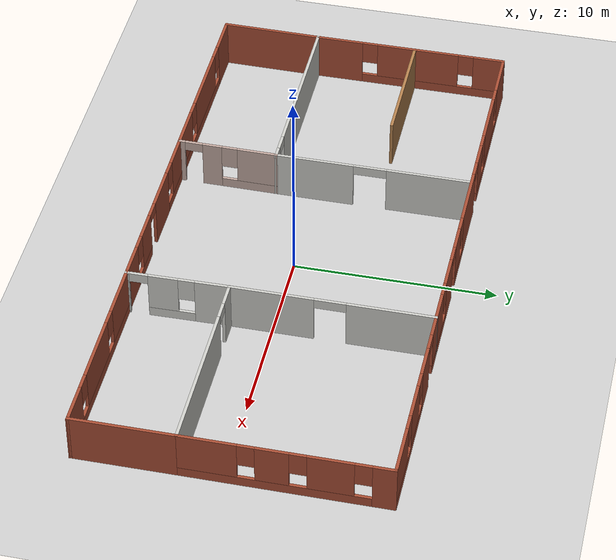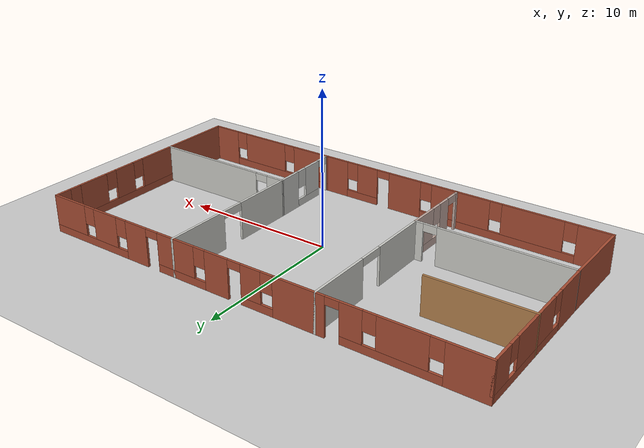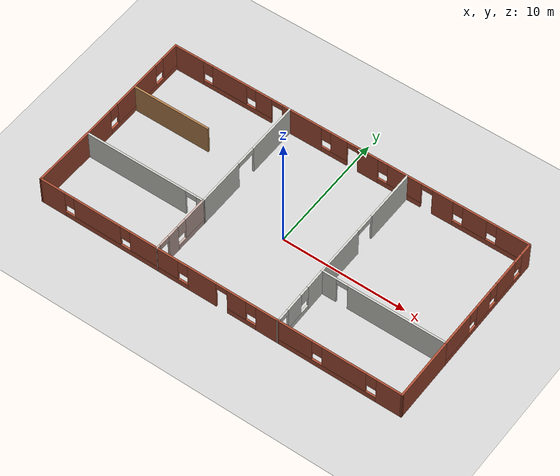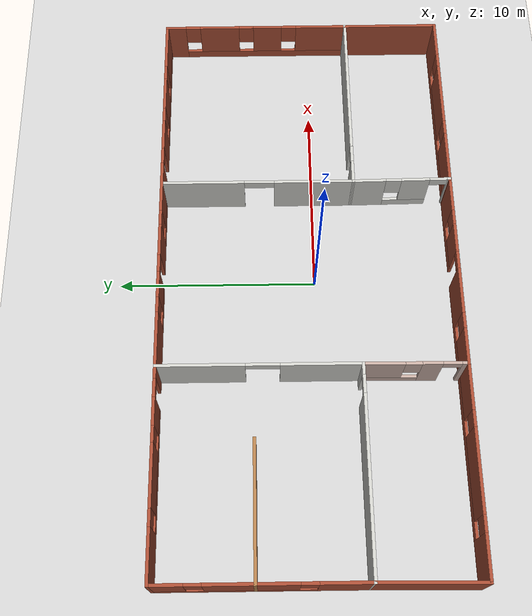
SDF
<sdf version="1.6">
 <world name="default">
  <model name="ground_plane">
   <static>1</static>
   <link name="link">
    <collision name="collision">
     <geometry><plane><normal>0 0 1</normal><size>100 100</size></plane></geometry>
     <surface><friction><ode><mu>100</mu><mu2>50</mu2></ode></friction></surface>
    </collision>
    <visual name="visual">
     <cast_shadows>0</cast_shadows>
     <geometry><plane><normal>0 0 1</normal><size>100 100</size></plane></geometry>
     <material>
      <script><uri>file://media/materials/scripts/gazebo.material</uri><name>Gazebo/Grey</name></script>
     </material>
    </visual>
   </link>
  </model>
  <model name="model">
   <pose>-0.287073 0.38076 0 0 -0 0</pose>
   <link name="Wall_0">
    <pose>0.025373 7.41389 0 0 -0 0</pose>
    <visual name="Wall_0_Visual_0">
     <pose>-13.6006 0 1.25 0 -0 0</pose>
     <geometry><box><size>2.54886 0.15 2.5</size></box></geometry>
     <material>
      <script><uri>file://media/materials/scripts/gazebo.material</uri><name>Gazebo/Bricks</name></script>
      <ambient>1 1 1 1</ambient>
     </material>
     <meta><layer>0</layer></meta>
    </visual>
    <collision name="Wall_0_Collision_0">
     <geometry><box><size>2.54886 0.15 2.5</size></box></geometry>
     <pose>-13.6006 0 1.25 0 -0 0</pose>
    </collision>
    <visual name="Wall_0_Visual_1">
     <pose>-3.84098 0 1.25 0 -0 0</pose>
     <geometry><box><size>3.3339 0.15 2.5</size></box></geometry>
     <material>
      <script><uri>file://media/materials/scripts/gazebo.material</uri><name>Gazebo/Bricks</name></script>
      <ambient>1 1 1 1</ambient>
     </material>
     <meta><layer>0</layer></meta>
    </visual>
    <collision name="Wall_0_Collision_1">
     <geometry><box><size>3.3339 0.15 2.5</size></box></geometry>
     <pose>-3.84098 0 1.25 0 -0 0</pose>
    </collision>
    <visual name="Wall_0_Visual_2">
     <pose>1.72729 0 1.25 0 -0 0</pose>
     <geometry><box><size>1.67264 0.15 2.5</size></box></geometry>
     <material>
      <script><uri>file://media/materials/scripts/gazebo.material</uri><name>Gazebo/Bricks</name></script>
      <ambient>1 1 1 1</ambient>
     </material>
     <meta><layer>0</layer></meta>
    </visual>
    <collision name="Wall_0_Collision_2">
     <geometry><box><size>1.67264 0.15 2.5</size></box></geometry>
     <pose>1.72729 0 1.25 0 -0 0</pose>
    </collision>
    <visual name="Wall_0_Visual_3">
     <pose>7.88007 0 1.25 0 -0 0</pose>
     <geometry><box><size>1.67264 0.15 2.5</size></box></geometry>
     <material>
      <script><uri>file://media/materials/scripts/gazebo.material</uri><name>Gazebo/Bricks</name></script>
      <ambient>1 1 1 1</ambient>
     </material>
     <meta><layer>0</layer></meta>
    </visual>
    <collision name="Wall_0_Collision_3">
     <geometry><box><size>1.67264 0.15 2.5</size></box></geometry>
     <pose>7.88007 0 1.25 0 -0 0</pose>
    </collision>
    <visual name="Wall_0_Visual_4">
     <pose>-9.36703 0 0.25 0 -0 0</pose>
     <geometry><box><size>5.9182 0.15 0.5</size></box></geometry>
     <material>
      <script><uri>file://media/materials/scripts/gazebo.material</uri><name>Gazebo/Bricks</name></script>
      <ambient>1 1 1 1</ambient>
     </material>
     <meta><layer>0</layer></meta>
    </visual>
    <collision name="Wall_0_Collision_4">
     <geometry><box><size>5.9182 0.15 0.5</size></box></geometry>
     <pose>-9.36703 0 0.25 0 -0 0</pose>
    </collision>
    <visual name="Wall_0_Visual_5">
     <pose>-1.09154 0 0.25 0 -0 0</pose>
     <geometry><box><size>2.165 0.15 0.5</size></box></geometry>
     <material>
      <script><uri>file://media/materials/scripts/gazebo.material</uri><name>Gazebo/Bricks</name></script>
      <ambient>1 1 1 1</ambient>
     </material>
     <meta><layer>0</layer></meta>
    </visual>
    <collision name="Wall_0_Collision_5">
     <geometry><box><size>2.165 0.15 0.5</size></box></geometry>
     <pose>-1.09154 0 0.25 0 -0 0</pose>
    </collision>
    <visual name="Wall_0_Visual_6">
     <pose>4.35368 0 0.25 0 -0 0</pose>
     <geometry><box><size>3.58014 0.15 0.5</size></box></geometry>
     <material>
      <script><uri>file://media/materials/scripts/gazebo.material</uri><name>Gazebo/Bricks</name></script>
      <ambient>1 1 1 1</ambient>
     </material>
     <meta><layer>0</layer></meta>
    </visual>
    <collision name="Wall_0_Collision_6">
     <geometry><box><size>3.58014 0.15 0.5</size></box></geometry>
     <pose>4.35368 0 0.25 0 -0 0</pose>
    </collision>
    <visual name="Wall_0_Visual_7">
     <pose>11.7957 0 0.25 0 -0 0</pose>
     <geometry><box><size>6.1586 0.15 0.5</size></box></geometry>
     <material>
      <script><uri>file://media/materials/scripts/gazebo.material</uri><name>Gazebo/Bricks</name></script>
      <ambient>1 1 1 1</ambient>
     </material>
     <meta><layer>0</layer></meta>
    </visual>
    <collision name="Wall_0_Collision_7">
     <geometry><box><size>6.1586 0.15 0.5</size></box></geometry>
     <pose>11.7957 0 0.25 0 -0 0</pose>
    </collision>
    <visual name="Wall_0_Visual_8">
     <pose>-10.0495 0 1.5 0 -0 0</pose>
     <geometry><box><size>2.9532 0.15 2</size></box></geometry>
     <material>
      <script><uri>file://media/materials/scripts/gazebo.material</uri><name>Gazebo/Bricks</name></script>
      <ambient>1 1 1 1</ambient>
     </material>
     <meta><layer>0</layer></meta>
    </visual>
    <collision name="Wall_0_Collision_8">
     <geometry><box><size>2.9532 0.15 2</size></box></geometry>
     <pose>-10.0495 0 1.5 0 -0 0</pose>
    </collision>
    <visual name="Wall_0_Visual_9">
     <pose>-7.09043 0 1.5 0 -0 0</pose>
     <geometry><box><size>1.365 0.15 2</size></box></geometry>
     <material>
      <script><uri>file://media/materials/scripts/gazebo.material</uri><name>Gazebo/Bricks</name></script>
      <ambient>1 1 1 1</ambient>
     </material>
     <meta><layer>0</layer></meta>
    </visual>
    <collision name="Wall_0_Collision_9">
     <geometry><box><size>1.365 0.15 2</size></box></geometry>
     <pose>-7.09043 0 1.5 0 -0 0</pose>
    </collision>
    <visual name="Wall_0_Visual_10">
     <pose>-7.09043 0 1.5 0 -0 0</pose>
     <geometry><box><size>1.365 0.15 2</size></box></geometry>
     <material>
      <script><uri>file://media/materials/scripts/gazebo.material</uri><name>Gazebo/Bricks</name></script>
      <ambient>1 1 1 1</ambient>
     </material>
     <meta><layer>0</layer></meta>
    </visual>
    <collision name="Wall_0_Collision_10">
     <geometry><box><size>1.365 0.15 2</size></box></geometry>
     <pose>-7.09043 0 1.5 0 -0 0</pose>
    </collision>
    <visual name="Wall_0_Visual_11">
     <pose>-0.691536 0 1.5 0 -0 0</pose>
     <geometry><box><size>1.365 0.15 2</size></box></geometry>
     <material>
      <script><uri>file://media/materials/scripts/gazebo.material</uri><name>Gazebo/Bricks</name></script>
      <ambient>1 1 1 1</ambient>
     </material>
     <meta><layer>0</layer></meta>
    </visual>
    <collision name="Wall_0_Collision_11">
     <geometry><box><size>1.365 0.15 2</size></box></geometry>
     <pose>-0.691536 0 1.5 0 -0 0</pose>
    </collision>
    <visual name="Wall_0_Visual_12">
     <pose>-0.691536 0 1.5 0 -0 0</pose>
     <geometry><box><size>1.365 0.15 2</size></box></geometry>
     <material>
      <script><uri>file://media/materials/scripts/gazebo.material</uri><name>Gazebo/Bricks</name></script>
      <ambient>1 1 1 1</ambient>
     </material>
     <meta><layer>0</layer></meta>
    </visual>
    <collision name="Wall_0_Collision_12">
     <geometry><box><size>1.365 0.15 2</size></box></geometry>
     <pose>-0.691536 0 1.5 0 -0 0</pose>
    </collision>
    <visual name="Wall_0_Visual_13">
     <pose>4.75368 0 1.5 0 -0 0</pose>
     <geometry><box><size>2.78015 0.15 2</size></box></geometry>
     <material>
      <script><uri>file://media/materials/scripts/gazebo.material</uri><name>Gazebo/Bricks</name></script>
      <ambient>1 1 1 1</ambient>
     </material>
     <meta><layer>0</layer></meta>
    </visual>
    <collision name="Wall_0_Collision_13">
     <geometry><box><size>2.78015 0.15 2</size></box></geometry>
     <pose>4.75368 0 1.5 0 -0 0</pose>
    </collision>
    <visual name="Wall_0_Visual_14">
     <pose>4.75368 0 1.5 0 -0 0</pose>
     <geometry><box><size>2.78015 0.15 2</size></box></geometry>
     <material>
      <script><uri>file://media/materials/scripts/gazebo.material</uri><name>Gazebo/Bricks</name></script>
      <ambient>1 1 1 1</ambient>
     </material>
     <meta><layer>0</layer></meta>
    </visual>
    <collision name="Wall_0_Collision_14">
     <geometry><box><size>2.78015 0.15 2</size></box></geometry>
     <pose>4.75368 0 1.5 0 -0 0</pose>
    </collision>
    <visual name="Wall_0_Visual_15">
     <pose>10.47 0 1.5 0 -0 0</pose>
     <geometry><box><size>1.90723 0.15 2</size></box></geometry>
     <material>
      <script><uri>file://media/materials/scripts/gazebo.material</uri><name>Gazebo/Bricks</name></script>
      <ambient>1 1 1 1</ambient>
     </material>
     <meta><layer>0</layer></meta>
    </visual>
    <collision name="Wall_0_Collision_15">
     <geometry><box><size>1.90723 0.15 2</size></box></geometry>
     <pose>10.47 0 1.5 0 -0 0</pose>
    </collision>
    <visual name="Wall_0_Visual_16">
     <pose>13.5493 0 1.5 0 -0 0</pose>
     <geometry><box><size>2.65138 0.15 2</size></box></geometry>
     <material>
      <script><uri>file://media/materials/scripts/gazebo.material</uri><name>Gazebo/Bricks</name></script>
      <ambient>1 1 1 1</ambient>
     </material>
     <meta><layer>0</layer></meta>
    </visual>
    <collision name="Wall_0_Collision_16">
     <geometry><box><size>2.65138 0.15 2</size></box></geometry>
     <pose>13.5493 0 1.5 0 -0 0</pose>
    </collision>
    <visual name="Wall_0_Visual_17">
     <pose>-11.9261 0 1.9 0 -0 0</pose>
     <geometry><box><size>0.8 0.15 1.2</size></box></geometry>
     <material>
      <script><uri>file://media/materials/scripts/gazebo.material</uri><name>Gazebo/Bricks</name></script>
      <ambient>1 1 1 1</ambient>
     </material>
     <meta><layer>0</layer></meta>
    </visual>
    <collision name="Wall_0_Collision_17">
     <geometry><box><size>0.8 0.15 1.2</size></box></geometry>
     <pose>-11.9261 0 1.9 0 -0 0</pose>
    </collision>
    <visual name="Wall_0_Visual_18">
     <pose>-1.77404 0 1.9 0 -0 0</pose>
     <geometry><box><size>0.8 0.15 1.2</size></box></geometry>
     <material>
      <script><uri>file://media/materials/scripts/gazebo.material</uri><name>Gazebo/Bricks</name></script>
      <ambient>1 1 1 1</ambient>
     </material>
     <meta><layer>0</layer></meta>
    </visual>
    <collision name="Wall_0_Collision_18">
     <geometry><box><size>0.8 0.15 1.2</size></box></geometry>
     <pose>-1.77404 0 1.9 0 -0 0</pose>
    </collision>
    <visual name="Wall_0_Visual_19">
     <pose>2.96361 0 1.9 0 -0 0</pose>
     <geometry><box><size>0.8 0.15 1.2</size></box></geometry>
     <material>
      <script><uri>file://media/materials/scripts/gazebo.material</uri><name>Gazebo/Bricks</name></script>
      <ambient>1 1 1 1</ambient>
     </material>
     <meta><layer>0</layer></meta>
    </visual>
    <collision name="Wall_0_Collision_19">
     <geometry><box><size>0.8 0.15 1.2</size></box></geometry>
     <pose>2.96361 0 1.9 0 -0 0</pose>
    </collision>
    <visual name="Wall_0_Visual_20">
     <pose>9.1164 0 1.9 0 -0 0</pose>
     <geometry><box><size>0.8 0.15 1.2</size></box></geometry>
     <material>
      <script><uri>file://media/materials/scripts/gazebo.material</uri><name>Gazebo/Bricks</name></script>
      <ambient>1 1 1 1</ambient>
     </material>
     <meta><layer>0</layer></meta>
    </visual>
    <collision name="Wall_0_Collision_20">
     <geometry><box><size>0.8 0.15 1.2</size></box></geometry>
     <pose>9.1164 0 1.9 0 -0 0</pose>
    </collision>
    <visual name="Wall_0_Visual_21">
     <pose>-8.17294 0 1.9 0 -0 0</pose>
     <geometry><box><size>0.8 0.15 1.2</size></box></geometry>
     <material>
      <script><uri>file://media/materials/scripts/gazebo.material</uri><name>Gazebo/Bricks</name></script>
      <ambient>1 1 1 1</ambient>
     </material>
     <meta><layer>0</layer></meta>
    </visual>
    <collision name="Wall_0_Collision_21">
     <geometry><box><size>0.8 0.15 1.2</size></box></geometry>
     <pose>-8.17294 0 1.9 0 -0 0</pose>
    </collision>
    <visual name="Wall_0_Visual_22">
     <pose>11.8236 0 1.9 0 -0 0</pose>
     <geometry><box><size>0.8 0.15 1.2</size></box></geometry>
     <material>
      <script><uri>file://media/materials/scripts/gazebo.material</uri><name>Gazebo/Bricks</name></script>
      <ambient>1 1 1 1</ambient>
     </material>
     <meta><layer>0</layer></meta>
    </visual>
    <collision name="Wall_0_Collision_22">
     <geometry><box><size>0.8 0.15 1.2</size></box></geometry>
     <pose>11.8236 0 1.9 0 -0 0</pose>
    </collision>
    <visual name="Wall_0_Visual_23">
     <pose>-5.95793 0 2.25 0 -0 0</pose>
     <geometry><box><size>0.9 0.15 0.5</size></box></geometry>
     <material>
      <script><uri>file://media/materials/scripts/gazebo.material</uri><name>Gazebo/Bricks</name></script>
      <ambient>1 1 1 1</ambient>
     </material>
     <meta><layer>0</layer></meta>
    </visual>
    <collision name="Wall_0_Collision_23">
     <geometry><box><size>0.9 0.15 0.5</size></box></geometry>
     <pose>-5.95793 0 2.25 0 -0 0</pose>
    </collision>
    <visual name="Wall_0_Visual_24">
     <pose>-5.95793 0 2.25 0 -0 0</pose>
     <geometry><box><size>0.9 0.15 0.5</size></box></geometry>
     <material>
      <script><uri>file://media/materials/scripts/gazebo.material</uri><name>Gazebo/Bricks</name></script>
      <ambient>1 1 1 1</ambient>
     </material>
     <meta><layer>0</layer></meta>
    </visual>
    <collision name="Wall_0_Collision_24">
     <geometry><box><size>0.9 0.15 0.5</size></box></geometry>
     <pose>-5.95793 0 2.25 0 -0 0</pose>
    </collision>
    <visual name="Wall_0_Visual_25">
     <pose>0.440966 0 2.25 0 -0 0</pose>
     <geometry><box><size>0.9 0.15 0.5</size></box></geometry>
     <material>
      <script><uri>file://media/materials/scripts/gazebo.material</uri><name>Gazebo/Bricks</name></script>
      <ambient>1 1 1 1</ambient>
     </material>
     <meta><layer>0</layer></meta>
    </visual>
    <collision name="Wall_0_Collision_25">
     <geometry><box><size>0.9 0.15 0.5</size></box></geometry>
     <pose>0.440966 0 2.25 0 -0 0</pose>
    </collision>
    <visual name="Wall_0_Visual_26">
     <pose>0.440966 0 2.25 0 -0 0</pose>
     <geometry><box><size>0.9 0.15 0.5</size></box></geometry>
     <material>
      <script><uri>file://media/materials/scripts/gazebo.material</uri><name>Gazebo/Bricks</name></script>
      <ambient>1 1 1 1</ambient>
     </material>
     <meta><layer>0</layer></meta>
    </visual>
    <collision name="Wall_0_Collision_26">
     <geometry><box><size>0.9 0.15 0.5</size></box></geometry>
     <pose>0.440966 0 2.25 0 -0 0</pose>
    </collision>
    <visual name="Wall_0_Visual_27">
     <pose>6.59375 0 2.25 0 -0 0</pose>
     <geometry><box><size>0.9 0.15 0.5</size></box></geometry>
     <material>
      <script><uri>file://media/materials/scripts/gazebo.material</uri><name>Gazebo/Bricks</name></script>
      <ambient>1 1 1 1</ambient>
     </material>
     <meta><layer>0</layer></meta>
    </visual>
    <collision name="Wall_0_Collision_27">
     <geometry><box><size>0.9 0.15 0.5</size></box></geometry>
     <pose>6.59375 0 2.25 0 -0 0</pose>
    </collision>
    <visual name="Wall_0_Visual_28">
     <pose>6.59375 0 2.25 0 -0 0</pose>
     <geometry><box><size>0.9 0.15 0.5</size></box></geometry>
     <material>
      <script><uri>file://media/materials/scripts/gazebo.material</uri><name>Gazebo/Bricks</name></script>
      <ambient>1 1 1 1</ambient>
     </material>
     <meta><layer>0</layer></meta>
    </visual>
    <collision name="Wall_0_Collision_28">
     <geometry><box><size>0.9 0.15 0.5</size></box></geometry>
     <pose>6.59375 0 2.25 0 -0 0</pose>
    </collision>
   </link>
   <link name="Wall_1">
    <pose>14.8254 2.48889 0 0 0 -1.5708</pose>
    <visual name="Wall_1_Visual_0">
     <pose>-4.44963 0 1.25 0 -0 0</pose>
     <geometry><box><size>1.10073 0.15 2.5</size></box></geometry>
     <material>
      <script><uri>file://media/materials/scripts/gazebo.material</uri><name>Gazebo/Bricks</name></script>
      <ambient>1 1 1 1</ambient>
     </material>
     <meta><layer>0</layer></meta>
    </visual>
    <collision name="Wall_1_Collision_0">
     <geometry><box><size>1.10073 0.15 2.5</size></box></geometry>
     <pose>-4.44963 0 1.25 0 -0 0</pose>
    </collision>
    <visual name="Wall_1_Visual_1">
     <pose>0.550366 0 0.25 0 -0 0</pose>
     <geometry><box><size>8.89927 0.15 0.5</size></box></geometry>
     <material>
      <script><uri>file://media/materials/scripts/gazebo.material</uri><name>Gazebo/Bricks</name></script>
      <ambient>1 1 1 1</ambient>
     </material>
     <meta><layer>0</layer></meta>
    </visual>
    <collision name="Wall_1_Collision_1">
     <geometry><box><size>8.89927 0.15 0.5</size></box></geometry>
     <pose>0.550366 0 0.25 0 -0 0</pose>
    </collision>
    <visual name="Wall_1_Visual_2">
     <pose>-2.02795 0 1.5 0 -0 0</pose>
     <geometry><box><size>2.14264 0.15 2</size></box></geometry>
     <material>
      <script><uri>file://media/materials/scripts/gazebo.material</uri><name>Gazebo/Bricks</name></script>
      <ambient>1 1 1 1</ambient>
     </material>
     <meta><layer>0</layer></meta>
    </visual>
    <collision name="Wall_1_Collision_2">
     <geometry><box><size>2.14264 0.15 2</size></box></geometry>
     <pose>-2.02795 0 1.5 0 -0 0</pose>
    </collision>
    <visual name="Wall_1_Visual_3">
     <pose>0.620425 0 1.5 0 -0 0</pose>
     <geometry><box><size>1.55411 0.15 2</size></box></geometry>
     <material>
      <script><uri>file://media/materials/scripts/gazebo.material</uri><name>Gazebo/Bricks</name></script>
      <ambient>1 1 1 1</ambient>
     </material>
     <meta><layer>0</layer></meta>
    </visual>
    <collision name="Wall_1_Collision_3">
     <geometry><box><size>1.55411 0.15 2</size></box></geometry>
     <pose>0.620425 0 1.5 0 -0 0</pose>
    </collision>
    <visual name="Wall_1_Visual_4">
     <pose>3.59874 0 1.5 0 -0 0</pose>
     <geometry><box><size>2.80252 0.15 2</size></box></geometry>
     <material>
      <script><uri>file://media/materials/scripts/gazebo.material</uri><name>Gazebo/Bricks</name></script>
      <ambient>1 1 1 1</ambient>
     </material>
     <meta><layer>0</layer></meta>
    </visual>
    <collision name="Wall_1_Collision_4">
     <geometry><box><size>2.80252 0.15 2</size></box></geometry>
     <pose>3.59874 0 1.5 0 -0 0</pose>
    </collision>
    <visual name="Wall_1_Visual_5">
     <pose>-3.49927 0 1.9 0 -0 0</pose>
     <geometry><box><size>0.8 0.15 1.2</size></box></geometry>
     <material>
      <script><uri>file://media/materials/scripts/gazebo.material</uri><name>Gazebo/Bricks</name></script>
      <ambient>1 1 1 1</ambient>
     </material>
     <meta><layer>0</layer></meta>
    </visual>
    <collision name="Wall_1_Collision_5">
     <geometry><box><size>0.8 0.15 1.2</size></box></geometry>
     <pose>-3.49927 0 1.9 0 -0 0</pose>
    </collision>
    <visual name="Wall_1_Visual_6">
     <pose>-0.55663 0 1.9 0 -0 0</pose>
     <geometry><box><size>0.8 0.15 1.2</size></box></geometry>
     <material>
      <script><uri>file://media/materials/scripts/gazebo.material</uri><name>Gazebo/Bricks</name></script>
      <ambient>1 1 1 1</ambient>
     </material>
     <meta><layer>0</layer></meta>
    </visual>
    <collision name="Wall_1_Collision_6">
     <geometry><box><size>0.8 0.15 1.2</size></box></geometry>
     <pose>-0.55663 0 1.9 0 -0 0</pose>
    </collision>
    <visual name="Wall_1_Visual_7">
     <pose>1.79748 0 1.9 0 -0 0</pose>
     <geometry><box><size>0.8 0.15 1.2</size></box></geometry>
     <material>
      <script><uri>file://media/materials/scripts/gazebo.material</uri><name>Gazebo/Bricks</name></script>
      <ambient>1 1 1 1</ambient>
     </material>
     <meta><layer>0</layer></meta>
    </visual>
    <collision name="Wall_1_Collision_7">
     <geometry><box><size>0.8 0.15 1.2</size></box></geometry>
     <pose>1.79748 0 1.9 0 -0 0</pose>
    </collision>
   </link>
   <link name="Wall_11">
    <pose>4.97537 2.48889 0 0 -0 1.5708</pose>
    <visual name="Wall_11_Visual_0">
     <pose>-2.93024 0 1.25 0 -0 0</pose>
     <geometry><box><size>4.13951 0.15 2.5</size></box></geometry>
     <material>
      <script><uri>file://media/materials/scripts/gazebo.material</uri><name>Gazebo/CeilingTiled</name></script>
      <ambient>0.760784 0.662745 0.627451 1</ambient>
     </material>
     <meta><layer>0</layer></meta>
    </visual>
    <collision name="Wall_11_Collision_0">
     <geometry><box><size>4.13951 0.15 2.5</size></box></geometry>
     <pose>-2.93024 0 1.25 0 -0 0</pose>
    </collision>
    <visual name="Wall_11_Visual_1">
     <pose>2.83896 0 1.25 0 -0 0</pose>
     <geometry><box><size>4.32208 0.15 2.5</size></box></geometry>
     <material>
      <script><uri>file://media/materials/scripts/gazebo.material</uri><name>Gazebo/CeilingTiled</name></script>
      <ambient>0.760784 0.662745 0.627451 1</ambient>
     </material>
     <meta><layer>0</layer></meta>
    </visual>
    <collision name="Wall_11_Collision_1">
     <geometry><box><size>4.32208 0.15 2.5</size></box></geometry>
     <pose>2.83896 0 1.25 0 -0 0</pose>
    </collision>
    <visual name="Wall_11_Visual_2">
     <pose>-0.091286 0 2.25 0 -0 0</pose>
     <geometry><box><size>1.53841 0.15 0.5</size></box></geometry>
     <material>
      <script><uri>file://media/materials/scripts/gazebo.material</uri><name>Gazebo/CeilingTiled</name></script>
      <ambient>0.760784 0.662745 0.627451 1</ambient>
     </material>
     <meta><layer>0</layer></meta>
    </visual>
    <collision name="Wall_11_Collision_2">
     <geometry><box><size>1.53841 0.15 0.5</size></box></geometry>
     <pose>-0.091286 0 2.25 0 -0 0</pose>
    </collision>
   </link>
   <link name="Wall_13">
    <collision name="Wall_13_Collision">
     <geometry><box><size>6.5 0.15 2.5</size></box></geometry>
     <pose>0 0 1.25 0 -0 0</pose>
    </collision>
    <visual name="Wall_13_Visual">
     <pose>0 0 1.25 0 -0 0</pose>
     <geometry><box><size>6.5 0.15 2.5</size></box></geometry>
     <material>
      <script><uri>file://media/materials/scripts/gazebo.material</uri><name>Gazebo/Wood</name></script>
      <ambient>0.760784 0.662745 0.627451 1</ambient>
     </material>
     <meta><layer>0</layer></meta>
    </visual>
    <pose>-11.603 2.7386 0 0 -0 3.14159</pose>
   </link>
   <link name="Wall_15">
    <collision name="Wall_15_Collision">
     <geometry><box><size>5.12694 0.15 2.5</size></box></geometry>
     <pose>0 0 1.25 0 -0 0</pose>
    </collision>
    <visual name="Wall_15_Visual">
     <pose>0 0 1.25 0 -0 0</pose>
     <geometry><box><size>5.12694 0.15 2.5</size></box></geometry>
     <material>
      <script><uri>file://media/materials/scripts/gazebo.material</uri><name>Gazebo/Bricks</name></script>
      <ambient>1 1 1 1</ambient>
     </material>
     <meta><layer>0</layer></meta>
    </visual>
    <pose>-14.8054 -4.92459 0 0 0 -1.58316</pose>
   </link>
   <link name="Wall_16">
    <pose>-9.84963 -7.41306 0 0 -0 0</pose>
    <visual name="Wall_16_Visual_0">
     <pose>-3.95366 0 1.25 0 -0 0</pose>
     <geometry><box><size>2.09269 0.15 2.5</size></box></geometry>
     <material>
      <script><uri>file://media/materials/scripts/gazebo.material</uri><name>Gazebo/Bricks</name></script>
      <ambient>1 1 1 1</ambient>
     </material>
     <meta><layer>0</layer></meta>
    </visual>
    <collision name="Wall_16_Collision_0">
     <geometry><box><size>2.09269 0.15 2.5</size></box></geometry>
     <pose>-3.95366 0 1.25 0 -0 0</pose>
    </collision>
    <visual name="Wall_16_Visual_1">
     <pose>1.04634 0 0.25 0 -0 0</pose>
     <geometry><box><size>7.90731 0.15 0.5</size></box></geometry>
     <material>
      <script><uri>file://media/materials/scripts/gazebo.material</uri><name>Gazebo/Bricks</name></script>
      <ambient>1 1 1 1</ambient>
     </material>
     <meta><layer>0</layer></meta>
    </visual>
    <collision name="Wall_16_Collision_1">
     <geometry><box><size>7.90731 0.15 0.5</size></box></geometry>
     <pose>1.04634 0 0.25 0 -0 0</pose>
    </collision>
    <visual name="Wall_16_Visual_2">
     <pose>-0.126452 0 1.5 0 -0 0</pose>
     <geometry><box><size>3.96172 0.15 2</size></box></geometry>
     <material>
      <script><uri>file://media/materials/scripts/gazebo.material</uri><name>Gazebo/Bricks</name></script>
      <ambient>1 1 1 1</ambient>
     </material>
     <meta><layer>0</layer></meta>
    </visual>
    <collision name="Wall_16_Collision_2">
     <geometry><box><size>3.96172 0.15 2</size></box></geometry>
     <pose>-0.126452 0 1.5 0 -0 0</pose>
    </collision>
    <visual name="Wall_16_Visual_3">
     <pose>3.8272 0 1.5 0 -0 0</pose>
     <geometry><box><size>2.34559 0.15 2</size></box></geometry>
     <material>
      <script><uri>file://media/materials/scripts/gazebo.material</uri><name>Gazebo/Bricks</name></script>
      <ambient>1 1 1 1</ambient>
     </material>
     <meta><layer>0</layer></meta>
    </visual>
    <collision name="Wall_16_Collision_3">
     <geometry><box><size>2.34559 0.15 2</size></box></geometry>
     <pose>3.8272 0 1.5 0 -0 0</pose>
    </collision>
    <visual name="Wall_16_Visual_4">
     <pose>-2.50731 0 1.9 0 -0 0</pose>
     <geometry><box><size>0.8 0.15 1.2</size></box></geometry>
     <material>
      <script><uri>file://media/materials/scripts/gazebo.material</uri><name>Gazebo/Bricks</name></script>
      <ambient>1 1 1 1</ambient>
     </material>
     <meta><layer>0</layer></meta>
    </visual>
    <collision name="Wall_16_Collision_4">
     <geometry><box><size>0.8 0.15 1.2</size></box></geometry>
     <pose>-2.50731 0 1.9 0 -0 0</pose>
    </collision>
    <visual name="Wall_16_Visual_5">
     <pose>2.25441 0 1.9 0 -0 0</pose>
     <geometry><box><size>0.8 0.15 1.2</size></box></geometry>
     <material>
      <script><uri>file://media/materials/scripts/gazebo.material</uri><name>Gazebo/Bricks</name></script>
      <ambient>1 1 1 1</ambient>
     </material>
     <meta><layer>0</layer></meta>
    </visual>
    <collision name="Wall_16_Collision_5">
     <geometry><box><size>0.8 0.15 1.2</size></box></geometry>
     <pose>2.25441 0 1.9 0 -0 0</pose>
    </collision>
   </link>
   <link name="Wall_18">
    <collision name="Wall_18_Collision">
     <geometry><box><size>5.12696 0.15 2.5</size></box></geometry>
     <pose>0 0 1.25 0 -0 0</pose>
    </collision>
    <visual name="Wall_18_Visual">
     <pose>0 0 1.25 0 -0 0</pose>
     <geometry><box><size>5.12696 0.15 2.5</size></box></geometry>
     <material>
      <script><uri>file://media/materials/scripts/gazebo.material</uri><name>Gazebo/Bricks</name></script>
      <ambient>1 1 1 1</ambient>
     </material>
     <meta><layer>0</layer></meta>
    </visual>
    <pose>14.8311 -4.92459 0 0 0 -1.56848</pose>
   </link>
   <link name="Wall_19">
    <pose>9.9119 -7.41306 0 0 -0 3.14159</pose>
    <visual name="Wall_19_Visual_0">
     <pose>-3.97421 0 1.25 0 -0 0</pose>
     <geometry><box><size>2.05158 0.15 2.5</size></box></geometry>
     <material>
      <script><uri>file://media/materials/scripts/gazebo.material</uri><name>Gazebo/Bricks</name></script>
      <ambient>1 1 1 1</ambient>
     </material>
     <meta><layer>0</layer></meta>
    </visual>
    <collision name="Wall_19_Collision_0">
     <geometry><box><size>2.05158 0.15 2.5</size></box></geometry>
     <pose>-3.97421 0 1.25 0 -0 0</pose>
    </collision>
    <visual name="Wall_19_Visual_1">
     <pose>1.02579 0 0.25 0 -0 0</pose>
     <geometry><box><size>7.94842 0.15 0.5</size></box></geometry>
     <material>
      <script><uri>file://media/materials/scripts/gazebo.material</uri><name>Gazebo/Bricks</name></script>
      <ambient>1 1 1 1</ambient>
     </material>
     <meta><layer>0</layer></meta>
    </visual>
    <collision name="Wall_19_Collision_1">
     <geometry><box><size>7.94842 0.15 0.5</size></box></geometry>
     <pose>1.02579 0 0.25 0 -0 0</pose>
    </collision>
    <visual name="Wall_19_Visual_2">
     <pose>-0.4071 0 1.5 0 -0 0</pose>
     <geometry><box><size>3.48263 0.15 2</size></box></geometry>
     <material>
      <script><uri>file://media/materials/scripts/gazebo.material</uri><name>Gazebo/Bricks</name></script>
      <ambient>1 1 1 1</ambient>
     </material>
     <meta><layer>0</layer></meta>
    </visual>
    <collision name="Wall_19_Collision_2">
     <geometry><box><size>3.48263 0.15 2</size></box></geometry>
     <pose>-0.4071 0 1.5 0 -0 0</pose>
    </collision>
    <visual name="Wall_19_Visual_3">
     <pose>3.56711 0 1.5 0 -0 0</pose>
     <geometry><box><size>2.86578 0.15 2</size></box></geometry>
     <material>
      <script><uri>file://media/materials/scripts/gazebo.material</uri><name>Gazebo/Bricks</name></script>
      <ambient>1 1 1 1</ambient>
     </material>
     <meta><layer>0</layer></meta>
    </visual>
    <collision name="Wall_19_Collision_3">
     <geometry><box><size>2.86578 0.15 2</size></box></geometry>
     <pose>3.56711 0 1.5 0 -0 0</pose>
    </collision>
    <visual name="Wall_19_Visual_4">
     <pose>-2.54842 0 1.9 0 -0 0</pose>
     <geometry><box><size>0.8 0.15 1.2</size></box></geometry>
     <material>
      <script><uri>file://media/materials/scripts/gazebo.material</uri><name>Gazebo/Bricks</name></script>
      <ambient>1 1 1 1</ambient>
     </material>
     <meta><layer>0</layer></meta>
    </visual>
    <collision name="Wall_19_Collision_4">
     <geometry><box><size>0.8 0.15 1.2</size></box></geometry>
     <pose>-2.54842 0 1.9 0 -0 0</pose>
    </collision>
    <visual name="Wall_19_Visual_5">
     <pose>1.73422 0 1.9 0 -0 0</pose>
     <geometry><box><size>0.8 0.15 1.2</size></box></geometry>
     <material>
      <script><uri>file://media/materials/scripts/gazebo.material</uri><name>Gazebo/Bricks</name></script>
      <ambient>1 1 1 1</ambient>
     </material>
     <meta><layer>0</layer></meta>
    </visual>
    <collision name="Wall_19_Collision_5">
     <geometry><box><size>0.8 0.15 1.2</size></box></geometry>
     <pose>1.73422 0 1.9 0 -0 0</pose>
    </collision>
   </link>
   <link name="Wall_2">
    <pose>9.90037 -2.43611 0 0 -0 3.14159</pose>
    <visual name="Wall_2_Visual_0">
     <pose>-1.08438 0 1.25 0 -0 0</pose>
     <geometry><box><size>7.83125 0.15 2.5</size></box></geometry>
     <material>
      <script><uri>file://media/materials/scripts/gazebo.material</uri><name>Gazebo/CeilingTiled</name></script>
      <ambient>0.921569 0.807843 0.615686 1</ambient>
     </material>
     <meta><layer>0</layer></meta>
    </visual>
    <collision name="Wall_2_Collision_0">
     <geometry><box><size>7.83125 0.15 2.5</size></box></geometry>
     <pose>-1.08438 0 1.25 0 -0 0</pose>
    </collision>
    <visual name="Wall_2_Visual_1">
     <pose>4.36562 0 1.25 0 -0 0</pose>
     <geometry><box><size>1.26875 0.15 2.5</size></box></geometry>
     <material>
      <script><uri>file://media/materials/scripts/gazebo.material</uri><name>Gazebo/CeilingTiled</name></script>
      <ambient>0.921569 0.807843 0.615686 1</ambient>
     </material>
     <meta><layer>0</layer></meta>
    </visual>
    <collision name="Wall_2_Collision_1">
     <geometry><box><size>1.26875 0.15 2.5</size></box></geometry>
     <pose>4.36562 0 1.25 0 -0 0</pose>
    </collision>
    <visual name="Wall_2_Visual_2">
     <pose>3.28125 0 2.25 0 -0 0</pose>
     <geometry><box><size>0.9 0.15 0.5</size></box></geometry>
     <material>
      <script><uri>file://media/materials/scripts/gazebo.material</uri><name>Gazebo/CeilingTiled</name></script>
      <ambient>0.921569 0.807843 0.615686 1</ambient>
     </material>
     <meta><layer>0</layer></meta>
    </visual>
    <collision name="Wall_2_Collision_2">
     <geometry><box><size>0.9 0.15 0.5</size></box></geometry>
     <pose>3.28125 0 2.25 0 -0 0</pose>
    </collision>
   </link>
   <link name="Wall_3">
    <pose>5.0119 -4.92459 0 0 0 -1.55612</pose>
    <visual name="Wall_3_Visual_0">
     <pose>-1.68748 0 1.25 0 -0 0</pose>
     <geometry><box><size>1.75199 0.15 2.5</size></box></geometry>
     <material>
      <script><uri>file://media/materials/scripts/gazebo.material</uri><name>Gazebo/CeilingTiled</name></script>
      <ambient>0.760784 0.662745 0.627451 1</ambient>
     </material>
     <meta><layer>0</layer></meta>
    </visual>
    <collision name="Wall_3_Collision_0">
     <geometry><box><size>1.75199 0.15 2.5</size></box></geometry>
     <pose>-1.68748 0 1.25 0 -0 0</pose>
    </collision>
    <visual name="Wall_3_Visual_1">
     <pose>2.45614 0 1.25 0 -0 0</pose>
     <geometry><box><size>0.214679 0.15 2.5</size></box></geometry>
     <material>
      <script><uri>file://media/materials/scripts/gazebo.material</uri><name>Gazebo/CeilingTiled</name></script>
      <ambient>0.760784 0.662745 0.627451 1</ambient>
     </material>
     <meta><layer>0</layer></meta>
    </visual>
    <collision name="Wall_3_Collision_1">
     <geometry><box><size>0.214679 0.15 2.5</size></box></geometry>
     <pose>2.45614 0 1.25 0 -0 0</pose>
    </collision>
    <visual name="Wall_3_Visual_2">
     <pose>0.318654 0 0.25 0 -0 0</pose>
     <geometry><box><size>2.26029 0.15 0.5</size></box></geometry>
     <material>
      <script><uri>file://media/materials/scripts/gazebo.material</uri><name>Gazebo/CeilingTiled</name></script>
      <ambient>0.760784 0.662745 0.627451 1</ambient>
     </material>
     <meta><layer>0</layer></meta>
    </visual>
    <collision name="Wall_3_Collision_2">
     <geometry><box><size>2.26029 0.15 0.5</size></box></geometry>
     <pose>0.318654 0 0.25 0 -0 0</pose>
    </collision>
    <visual name="Wall_3_Visual_3">
     <pose>0.718654 0 1.5 0 -0 0</pose>
     <geometry><box><size>1.46029 0.15 2</size></box></geometry>
     <material>
      <script><uri>file://media/materials/scripts/gazebo.material</uri><name>Gazebo/CeilingTiled</name></script>
      <ambient>0.760784 0.662745 0.627451 1</ambient>
     </material>
     <meta><layer>0</layer></meta>
    </visual>
    <collision name="Wall_3_Collision_3">
     <geometry><box><size>1.46029 0.15 2</size></box></geometry>
     <pose>0.718654 0 1.5 0 -0 0</pose>
    </collision>
    <visual name="Wall_3_Visual_4">
     <pose>-0.411491 0 1.9 0 -0 0</pose>
     <geometry><box><size>0.8 0.15 1.2</size></box></geometry>
     <material>
      <script><uri>file://media/materials/scripts/gazebo.material</uri><name>Gazebo/CeilingTiled</name></script>
      <ambient>0.760784 0.662745 0.627451 1</ambient>
     </material>
     <meta><layer>0</layer></meta>
    </visual>
    <collision name="Wall_3_Collision_4">
     <geometry><box><size>0.8 0.15 1.2</size></box></geometry>
     <pose>-0.411491 0 1.9 0 -0 0</pose>
    </collision>
    <visual name="Wall_3_Visual_5">
     <pose>1.8988 0 2.25 0 -0 0</pose>
     <geometry><box><size>0.9 0.15 0.5</size></box></geometry>
     <material>
      <script><uri>file://media/materials/scripts/gazebo.material</uri><name>Gazebo/CeilingTiled</name></script>
      <ambient>0.760784 0.662745 0.627451 1</ambient>
     </material>
     <meta><layer>0</layer></meta>
    </visual>
    <collision name="Wall_3_Collision_5">
     <geometry><box><size>0.9 0.15 0.5</size></box></geometry>
     <pose>1.8988 0 2.25 0 -0 0</pose>
    </collision>
   </link>
   <link name="Wall_4">
    <pose>0.061901 -7.41306 0 0 -0 3.14159</pose>
    <visual name="Wall_4_Visual_0">
     <pose>-4.12498 0 1.25 0 -0 0</pose>
     <geometry><box><size>1.8731 0.15 2.5</size></box></geometry>
     <material>
      <script><uri>file://media/materials/scripts/gazebo.material</uri><name>Gazebo/Bricks</name></script>
      <ambient>1 1 1 1</ambient>
     </material>
     <meta><layer>0</layer></meta>
    </visual>
    <collision name="Wall_4_Collision_0">
     <geometry><box><size>1.8731 0.15 2.5</size></box></geometry>
     <pose>-4.12498 0 1.25 0 -0 0</pose>
    </collision>
    <visual name="Wall_4_Visual_1">
     <pose>1.23719 0 1.25 0 -0 0</pose>
     <geometry><box><size>2.36213 0.15 2.5</size></box></geometry>
     <material>
      <script><uri>file://media/materials/scripts/gazebo.material</uri><name>Gazebo/Bricks</name></script>
      <ambient>1 1 1 1</ambient>
     </material>
     <meta><layer>0</layer></meta>
    </visual>
    <collision name="Wall_4_Collision_1">
     <geometry><box><size>2.36213 0.15 2.5</size></box></geometry>
     <pose>1.23719 0 1.25 0 -0 0</pose>
    </collision>
    <visual name="Wall_4_Visual_2">
     <pose>-2.01615 0 0.25 0 -0 0</pose>
     <geometry><box><size>2.34456 0.15 0.5</size></box></geometry>
     <material>
      <script><uri>file://media/materials/scripts/gazebo.material</uri><name>Gazebo/Bricks</name></script>
      <ambient>1 1 1 1</ambient>
     </material>
     <meta><layer>0</layer></meta>
    </visual>
    <collision name="Wall_4_Collision_2">
     <geometry><box><size>2.34456 0.15 0.5</size></box></geometry>
     <pose>-2.01615 0 0.25 0 -0 0</pose>
    </collision>
    <visual name="Wall_4_Visual_3">
     <pose>3.73989 0 0.25 0 -0 0</pose>
     <geometry><box><size>2.64327 0.15 0.5</size></box></geometry>
     <material>
      <script><uri>file://media/materials/scripts/gazebo.material</uri><name>Gazebo/Bricks</name></script>
      <ambient>1 1 1 1</ambient>
     </material>
     <meta><layer>0</layer></meta>
    </visual>
    <collision name="Wall_4_Collision_3">
     <geometry><box><size>2.64327 0.15 0.5</size></box></geometry>
     <pose>3.73989 0 0.25 0 -0 0</pose>
    </collision>
    <visual name="Wall_4_Visual_4">
     <pose>-1.61615 0 1.5 0 -0 0</pose>
     <geometry><box><size>1.54456 0.15 2</size></box></geometry>
     <material>
      <script><uri>file://media/materials/scripts/gazebo.material</uri><name>Gazebo/Bricks</name></script>
      <ambient>1 1 1 1</ambient>
     </material>
     <meta><layer>0</layer></meta>
    </visual>
    <collision name="Wall_4_Collision_4">
     <geometry><box><size>1.54456 0.15 2</size></box></geometry>
     <pose>-1.61615 0 1.5 0 -0 0</pose>
    </collision>
    <visual name="Wall_4_Visual_5">
     <pose>-1.61615 0 1.5 0 -0 0</pose>
     <geometry><box><size>1.54456 0.15 2</size></box></geometry>
     <material>
      <script><uri>file://media/materials/scripts/gazebo.material</uri><name>Gazebo/Bricks</name></script>
      <ambient>1 1 1 1</ambient>
     </material>
     <meta><layer>0</layer></meta>
    </visual>
    <collision name="Wall_4_Collision_5">
     <geometry><box><size>1.54456 0.15 2</size></box></geometry>
     <pose>-1.61615 0 1.5 0 -0 0</pose>
    </collision>
    <visual name="Wall_4_Visual_6">
     <pose>4.13989 0 1.5 0 -0 0</pose>
     <geometry><box><size>1.84327 0.15 2</size></box></geometry>
     <material>
      <script><uri>file://media/materials/scripts/gazebo.material</uri><name>Gazebo/Bricks</name></script>
      <ambient>1 1 1 1</ambient>
     </material>
     <meta><layer>0</layer></meta>
    </visual>
    <collision name="Wall_4_Collision_6">
     <geometry><box><size>1.84327 0.15 2</size></box></geometry>
     <pose>4.13989 0 1.5 0 -0 0</pose>
    </collision>
    <visual name="Wall_4_Visual_7">
     <pose>-2.78843 0 1.9 0 -0 0</pose>
     <geometry><box><size>0.8 0.15 1.2</size></box></geometry>
     <material>
      <script><uri>file://media/materials/scripts/gazebo.material</uri><name>Gazebo/Bricks</name></script>
      <ambient>1 1 1 1</ambient>
     </material>
     <meta><layer>0</layer></meta>
    </visual>
    <collision name="Wall_4_Collision_7">
     <geometry><box><size>0.8 0.15 1.2</size></box></geometry>
     <pose>-2.78843 0 1.9 0 -0 0</pose>
    </collision>
    <visual name="Wall_4_Visual_8">
     <pose>2.81826 0 1.9 0 -0 0</pose>
     <geometry><box><size>0.8 0.15 1.2</size></box></geometry>
     <material>
      <script><uri>file://media/materials/scripts/gazebo.material</uri><name>Gazebo/Bricks</name></script>
      <ambient>1 1 1 1</ambient>
     </material>
     <meta><layer>0</layer></meta>
    </visual>
    <collision name="Wall_4_Collision_8">
     <geometry><box><size>0.8 0.15 1.2</size></box></geometry>
     <pose>2.81826 0 1.9 0 -0 0</pose>
    </collision>
    <visual name="Wall_4_Visual_9">
     <pose>-0.393873 0 2.25 0 -0 0</pose>
     <geometry><box><size>0.9 0.15 0.5</size></box></geometry>
     <material>
      <script><uri>file://media/materials/scripts/gazebo.material</uri><name>Gazebo/Bricks</name></script>
      <ambient>1 1 1 1</ambient>
     </material>
     <meta><layer>0</layer></meta>
    </visual>
    <collision name="Wall_4_Collision_9">
     <geometry><box><size>0.9 0.15 0.5</size></box></geometry>
     <pose>-0.393873 0 2.25 0 -0 0</pose>
    </collision>
    <visual name="Wall_4_Visual_10">
     <pose>-0.393873 0 2.25 0 -0 0</pose>
     <geometry><box><size>0.9 0.15 0.5</size></box></geometry>
     <material>
      <script><uri>file://media/materials/scripts/gazebo.material</uri><name>Gazebo/Bricks</name></script>
      <ambient>1 1 1 1</ambient>
     </material>
     <meta><layer>0</layer></meta>
    </visual>
    <collision name="Wall_4_Collision_10">
     <geometry><box><size>0.9 0.15 0.5</size></box></geometry>
     <pose>-0.393873 0 2.25 0 -0 0</pose>
    </collision>
   </link>
   <link name="Wall_5">
    <pose>-4.89963 -4.92459 0 0 -0 1.56075</pose>
    <visual name="Wall_5_Visual_0">
     <pose>-2.37557 0 1.25 0 -0 0</pose>
     <geometry><box><size>0.376054 0.15 2.5</size></box></geometry>
     <material>
      <script><uri>file://media/materials/scripts/gazebo.material</uri><name>Gazebo/Grey</name></script>
      <ambient>0.760784 0.662745 0.627451 1</ambient>
     </material>
     <meta><layer>0</layer></meta>
    </visual>
    <collision name="Wall_5_Collision_0">
     <geometry><box><size>0.376054 0.15 2.5</size></box></geometry>
     <pose>-2.37557 0 1.25 0 -0 0</pose>
    </collision>
    <visual name="Wall_5_Visual_1">
     <pose>-0.795891 0 1.25 0 -0 0</pose>
     <geometry><box><size>0.983304 0.15 2.5</size></box></geometry>
     <material>
      <script><uri>file://media/materials/scripts/gazebo.material</uri><name>Gazebo/Grey</name></script>
      <ambient>0.760784 0.662745 0.627451 1</ambient>
     </material>
     <meta><layer>0</layer></meta>
    </visual>
    <collision name="Wall_5_Collision_1">
     <geometry><box><size>0.983304 0.15 2.5</size></box></geometry>
     <pose>-0.795891 0 1.25 0 -0 0</pose>
    </collision>
    <visual name="Wall_5_Visual_2">
     <pose>1.12968 0 0.25 0 -0 0</pose>
     <geometry><box><size>2.86784 0.15 0.5</size></box></geometry>
     <material>
      <script><uri>file://media/materials/scripts/gazebo.material</uri><name>Gazebo/Grey</name></script>
      <ambient>0.760784 0.662745 0.627451 1</ambient>
     </material>
     <meta><layer>0</layer></meta>
    </visual>
    <collision name="Wall_5_Collision_2">
     <geometry><box><size>2.86784 0.15 0.5</size></box></geometry>
     <pose>1.12968 0 0.25 0 -0 0</pose>
    </collision>
    <visual name="Wall_5_Visual_3">
     <pose>1.52968 0 1.5 0 -0 0</pose>
     <geometry><box><size>2.06784 0.15 2</size></box></geometry>
     <material>
      <script><uri>file://media/materials/scripts/gazebo.material</uri><name>Gazebo/Grey</name></script>
      <ambient>0.760784 0.662745 0.627451 1</ambient>
     </material>
     <meta><layer>0</layer></meta>
    </visual>
    <collision name="Wall_5_Collision_3">
     <geometry><box><size>2.06784 0.15 2</size></box></geometry>
     <pose>1.52968 0 1.5 0 -0 0</pose>
    </collision>
    <visual name="Wall_5_Visual_4">
     <pose>0.09576 0 1.9 0 -0 0</pose>
     <geometry><box><size>0.8 0.15 1.2</size></box></geometry>
     <material>
      <script><uri>file://media/materials/scripts/gazebo.material</uri><name>Gazebo/Grey</name></script>
      <ambient>0.760784 0.662745 0.627451 1</ambient>
     </material>
     <meta><layer>0</layer></meta>
    </visual>
    <collision name="Wall_5_Collision_4">
     <geometry><box><size>0.8 0.15 1.2</size></box></geometry>
     <pose>0.09576 0 1.9 0 -0 0</pose>
    </collision>
    <visual name="Wall_5_Visual_5">
     <pose>-1.73754 0 2.25 0 -0 0</pose>
     <geometry><box><size>0.9 0.15 0.5</size></box></geometry>
     <material>
      <script><uri>file://media/materials/scripts/gazebo.material</uri><name>Gazebo/Grey</name></script>
      <ambient>0.760784 0.662745 0.627451 1</ambient>
     </material>
     <meta><layer>0</layer></meta>
    </visual>
    <collision name="Wall_5_Collision_5">
     <geometry><box><size>0.9 0.15 0.5</size></box></geometry>
     <pose>-1.73754 0 2.25 0 -0 0</pose>
    </collision>
   </link>
   <link name="Wall_6">
    <pose>-9.82463 -2.43611 0 0 -0 3.14159</pose>
    <visual name="Wall_6_Visual_0">
     <pose>-4.7143 0 1.25 0 -0 0</pose>
     <geometry><box><size>0.621405 0.15 2.5</size></box></geometry>
     <material>
      <script><uri>file://media/materials/scripts/gazebo.material</uri><name>Gazebo/CeilingTiled</name></script>
      <ambient>0.996078 0.47451 0.0196078 1</ambient>
     </material>
     <meta><layer>0</layer></meta>
    </visual>
    <collision name="Wall_6_Collision_0">
     <geometry><box><size>0.621405 0.15 2.5</size></box></geometry>
     <pose>-4.7143 0 1.25 0 -0 0</pose>
    </collision>
    <visual name="Wall_6_Visual_1">
     <pose>0.760702 0 1.25 0 -0 0</pose>
     <geometry><box><size>8.52859 0.15 2.5</size></box></geometry>
     <material>
      <script><uri>file://media/materials/scripts/gazebo.material</uri><name>Gazebo/CeilingTiled</name></script>
      <ambient>0.996078 0.47451 0.0196078 1</ambient>
     </material>
     <meta><layer>0</layer></meta>
    </visual>
    <collision name="Wall_6_Collision_1">
     <geometry><box><size>8.52859 0.15 2.5</size></box></geometry>
     <pose>0.760702 0 1.25 0 -0 0</pose>
    </collision>
    <visual name="Wall_6_Visual_2">
     <pose>-3.95359 0 2.25 0 -0 0</pose>
     <geometry><box><size>0.9 0.15 0.5</size></box></geometry>
     <material>
      <script><uri>file://media/materials/scripts/gazebo.material</uri><name>Gazebo/CeilingTiled</name></script>
      <ambient>0.996078 0.47451 0.0196078 1</ambient>
     </material>
     <meta><layer>0</layer></meta>
    </visual>
    <collision name="Wall_6_Collision_2">
     <geometry><box><size>0.9 0.15 0.5</size></box></geometry>
     <pose>-3.95359 0 2.25 0 -0 0</pose>
    </collision>
   </link>
   <link name="Wall_7">
    <pose>-14.7746 2.48889 0 0 -0 1.5708</pose>
    <visual name="Wall_7_Visual_0">
     <pose>-3.75925 0 1.25 0 -0 0</pose>
     <geometry><box><size>2.4815 0.15 2.5</size></box></geometry>
     <material>
      <script><uri>file://media/materials/scripts/gazebo.material</uri><name>Gazebo/Bricks</name></script>
      <ambient>1 1 1 1</ambient>
     </material>
     <meta><layer>0</layer></meta>
    </visual>
    <collision name="Wall_7_Collision_0">
     <geometry><box><size>2.4815 0.15 2.5</size></box></geometry>
     <pose>-3.75925 0 1.25 0 -0 0</pose>
    </collision>
    <visual name="Wall_7_Visual_1">
     <pose>1.24075 0 0.25 0 -0 0</pose>
     <geometry><box><size>7.51849 0.15 0.5</size></box></geometry>
     <material>
      <script><uri>file://media/materials/scripts/gazebo.material</uri><name>Gazebo/Bricks</name></script>
      <ambient>1 1 1 1</ambient>
     </material>
     <meta><layer>0</layer></meta>
    </visual>
    <collision name="Wall_7_Collision_1">
     <geometry><box><size>7.51849 0.15 0.5</size></box></geometry>
     <pose>1.24075 0 0.25 0 -0 0</pose>
    </collision>
    <visual name="Wall_7_Visual_2">
     <pose>0.422874 0 1.5 0 -0 0</pose>
     <geometry><box><size>4.28274 0.15 2</size></box></geometry>
     <material>
      <script><uri>file://media/materials/scripts/gazebo.material</uri><name>Gazebo/Bricks</name></script>
      <ambient>1 1 1 1</ambient>
     </material>
     <meta><layer>0</layer></meta>
    </visual>
    <collision name="Wall_7_Collision_2">
     <geometry><box><size>4.28274 0.15 2</size></box></geometry>
     <pose>0.422874 0 1.5 0 -0 0</pose>
    </collision>
    <visual name="Wall_7_Visual_3">
     <pose>4.18212 0 1.5 0 -0 0</pose>
     <geometry><box><size>1.63576 0.15 2</size></box></geometry>
     <material>
      <script><uri>file://media/materials/scripts/gazebo.material</uri><name>Gazebo/Bricks</name></script>
      <ambient>1 1 1 1</ambient>
     </material>
     <meta><layer>0</layer></meta>
    </visual>
    <collision name="Wall_7_Collision_3">
     <geometry><box><size>1.63576 0.15 2</size></box></geometry>
     <pose>4.18212 0 1.5 0 -0 0</pose>
    </collision>
    <visual name="Wall_7_Visual_4">
     <pose>-2.11849 0 1.9 0 -0 0</pose>
     <geometry><box><size>0.8 0.15 1.2</size></box></geometry>
     <material>
      <script><uri>file://media/materials/scripts/gazebo.material</uri><name>Gazebo/Bricks</name></script>
      <ambient>1 1 1 1</ambient>
     </material>
     <meta><layer>0</layer></meta>
    </visual>
    <collision name="Wall_7_Collision_4">
     <geometry><box><size>0.8 0.15 1.2</size></box></geometry>
     <pose>-2.11849 0 1.9 0 -0 0</pose>
    </collision>
    <visual name="Wall_7_Visual_5">
     <pose>2.96424 0 1.9 0 -0 0</pose>
     <geometry><box><size>0.8 0.15 1.2</size></box></geometry>
     <material>
      <script><uri>file://media/materials/scripts/gazebo.material</uri><name>Gazebo/Bricks</name></script>
      <ambient>1 1 1 1</ambient>
     </material>
     <meta><layer>0</layer></meta>
    </visual>
    <collision name="Wall_7_Collision_5">
     <geometry><box><size>0.8 0.15 1.2</size></box></geometry>
     <pose>2.96424 0 1.9 0 -0 0</pose>
    </collision>
   </link>
   <link name="Wall_9">
    <pose>-4.87463 2.48889 0 0 -0 1.5708</pose>
    <visual name="Wall_9_Visual_0">
     <pose>-2.99773 0 1.25 0 -0 0</pose>
     <geometry><box><size>4.00453 0.15 2.5</size></box></geometry>
     <material>
      <script><uri>file://media/materials/scripts/gazebo.material</uri><name>Gazebo/CeilingTiled</name></script>
      <ambient>1 1 1 1</ambient>
     </material>
     <meta><layer>0</layer></meta>
    </visual>
    <collision name="Wall_9_Collision_0">
     <geometry><box><size>4.00453 0.15 2.5</size></box></geometry>
     <pose>-2.99773 0 1.25 0 -0 0</pose>
    </collision>
    <visual name="Wall_9_Visual_1">
     <pose>2.83208 0 1.25 0 -0 0</pose>
     <geometry><box><size>4.33584 0.15 2.5</size></box></geometry>
     <material>
      <script><uri>file://media/materials/scripts/gazebo.material</uri><name>Gazebo/CeilingTiled</name></script>
      <ambient>1 1 1 1</ambient>
     </material>
     <meta><layer>0</layer></meta>
    </visual>
    <collision name="Wall_9_Collision_1">
     <geometry><box><size>4.33584 0.15 2.5</size></box></geometry>
     <pose>2.83208 0 1.25 0 -0 0</pose>
    </collision>
    <visual name="Wall_9_Visual_2">
     <pose>-0.165653 0 2.25 0 -0 0</pose>
     <geometry><box><size>1.65963 0.15 0.5</size></box></geometry>
     <material>
      <script><uri>file://media/materials/scripts/gazebo.material</uri><name>Gazebo/CeilingTiled</name></script>
      <ambient>1 1 1 1</ambient>
     </material>
     <meta><layer>0</layer></meta>
    </visual>
    <collision name="Wall_9_Collision_2">
     <geometry><box><size>1.65963 0.15 0.5</size></box></geometry>
     <pose>-0.165653 0 2.25 0 -0 0</pose>
    </collision>
   </link>
   <static>1</static>
  </model>
 </world>
</sdf>
